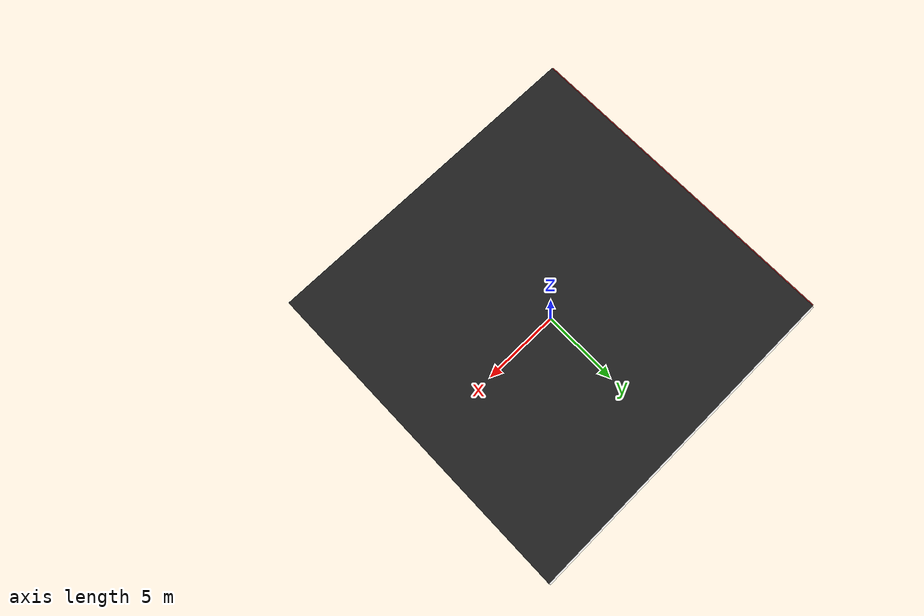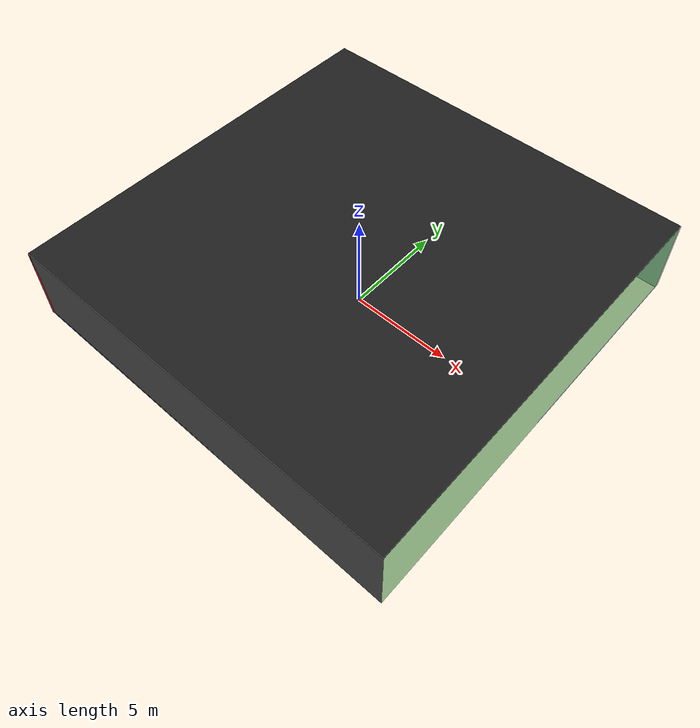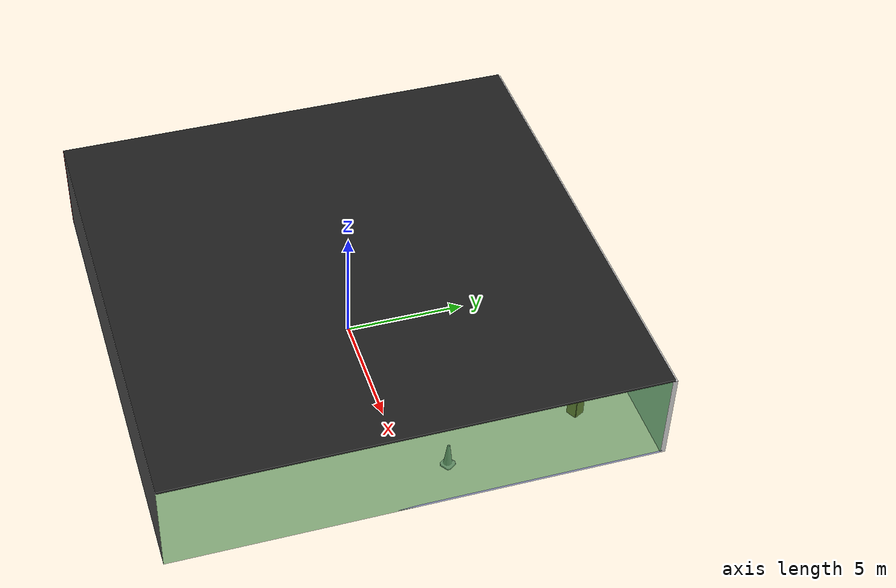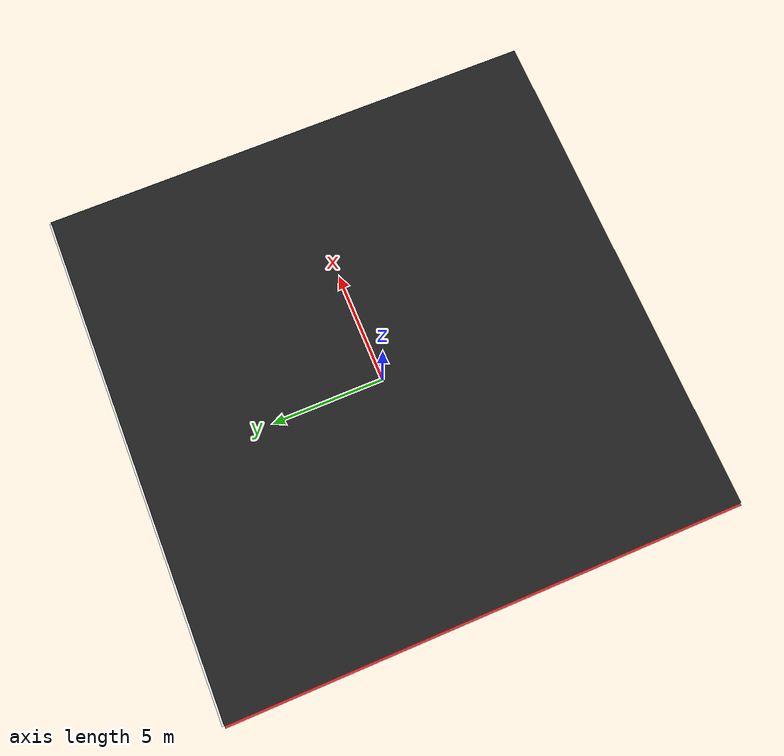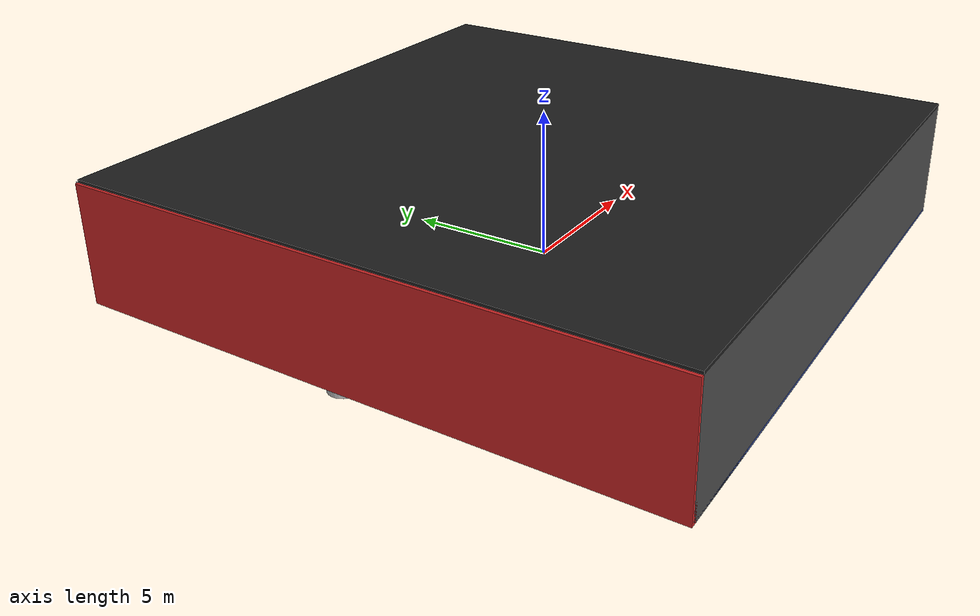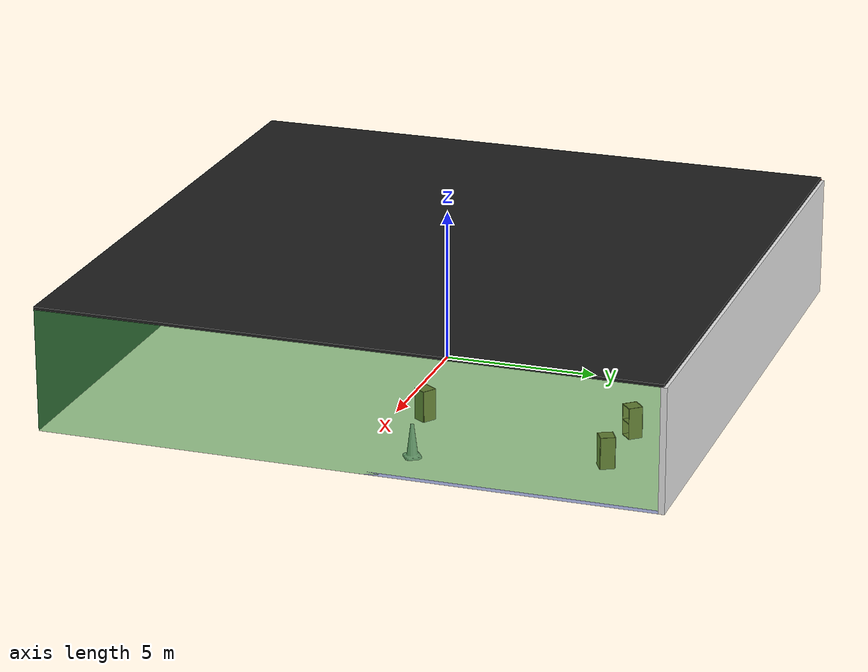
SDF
<sdf version="1.4">
 <world name="default">
  <physics type="ode">
   <max_step_size>0.001</max_step_size>
   <real_time_factor>1</real_time_factor>
   <real_time_update_rate>1000</real_time_update_rate>
   <gravity>0 0 -9.8</gravity>
  </physics>
  <scene><ambient>0.4 0.4 0.4 1</ambient><background>0.7 0.7 0.7 1</background><shadows>1</shadows></scene>
  <model name="Surrounding">
   <static>1</static>
   <link name="Ceiling">
    <collision name="Ceiling_Collision"><geometry><box><size>20 20 0.1</size></box></geometry></collision>
    <visual name="Ceiling_Visual">
     <geometry><box><size>20 20 0.1</size></box></geometry>
     <material>
      <script><uri>file://media/materials/scripts/gazebo.material</uri><name>Gazebo/FlatBlack</name></script>
     </material>
    </visual>
    <pose>0 0 4.05 0 0 0</pose>
   </link>
   <link name="Wall_South">
    <collision name="Wall_South_Collision">
     <geometry><box><size>20 0 4</size></box></geometry>
     <pose>0 0 2 0 -0 0</pose>
    </collision>
    <visual name="Wall_South_Visual">
     <pose>0 0 2 0 -0 0</pose>
     <geometry><box><size>20 0 4</size></box></geometry>
     <material>
      <script><uri>file://media/materials/scripts/gazebo.material</uri><name>Gazebo/Road</name></script>
     </material>
    </visual>
    <velocity_decay><linear>0</linear><angular>0</angular></velocity_decay>
    <pose>0 -10 0 0 -0 0</pose>
   </link>
   <link name="Wall_East">
    <collision name="Wall_21_Collision">
     <geometry><box><size>20 0 4</size></box></geometry>
     <pose>0 0 2 0 -0 0</pose>
    </collision>
    <visual name="Wall_21_Visual">
     <pose>0 0 2 0 -0 0</pose>
     <geometry><box><size>20 0 4</size></box></geometry>
     <material>
      <script><uri>file://media/materials/scripts/gazebo.material</uri><name>Gazebo/GreenTransparent</name></script>
     </material>
    </visual>
    <velocity_decay><linear>0</linear><angular>0</angular></velocity_decay>
    <pose>10 0 0 0 -0 1.5708</pose>
   </link>
   <link name="Wall_North">
    <collision name="Wall_22_Collision">
     <geometry><box><size>20 0.2 4</size></box></geometry>
     <pose>0 0 2 0 -0 0</pose>
    </collision>
    <visual name="Wall_22_Visual">
     <pose>0 0 2 0 -0 0</pose>
     <geometry><box><size>20 0.2 4</size></box></geometry>
     <material>
      <script><uri>file://media/materials/scripts/gazebo.material</uri><name>Gazebo/White</name></script>
     </material>
    </visual>
    <velocity_decay><linear>0</linear><angular>0</angular></velocity_decay>
    <pose>0 10 0 0 -0 0</pose>
   </link>
   <link name="Wall_West">
    <collision name="Wall_23_Collision">
     <geometry><box><size>20 0.2 4</size></box></geometry>
     <pose>0 0 2 0 -0 0</pose>
    </collision>
    <visual name="Wall_23_Visual">
     <pose>0 0 2 0 -0 0</pose>
     <geometry><box><size>20 0.2 4</size></box></geometry>
     <material>
      <script><uri>file://media/materials/scripts/gazebo.material</uri><name>Gazebo/Red</name></script>
     </material>
    </visual>
    <velocity_decay><linear>0</linear><angular>0</angular></velocity_decay>
    <pose>-10 0 0 0 0 -1.5708</pose>
   </link>
   <link name="Ground_link">
    <collision name="collision">
     <pose>0 0 .05 0 -0 0</pose>
     <geometry><box><size>20 20 0.1</size></box></geometry>
    </collision>
    <visual name="visual">
     <pose>0 0 .05 0 -0 0</pose>
     <geometry><box><size>20 20 0.1</size></box></geometry>
     <material>
      <script><uri>file://media/materials/scripts/gazebo.material</uri><name>Gazebo/BlueTransparent</name></script>
     </material>
    </visual>
   </link>
   <static>1</static>
  </model>
  <spherical_coordinates>
   <surface_model>EARTH_WGS84</surface_model>
   <latitude_deg>0</latitude_deg>
   <longitude_deg>0</longitude_deg>
   <elevation>0</elevation>
   <heading_deg>0</heading_deg>
  </spherical_coordinates>
  <light name="lightball_0" type="diffuse">
   <diffuse>0.8 0.8 0.8 1</diffuse>
   <specular>0.2 0.2 0.2 1</specular>
   <attenuation>
    <range>100</range>
    <constant>0.7</constant>
    <linear>0.01</linear>
    <quadratic>0.001</quadratic>
   </attenuation>
   <direction>-0.5 0.1 -0.9</direction>
   <pose>-2.07247385726 -7.69553295814 2.85936256504 0 0 0</pose>
  </light>
  <light name="lightball_1" type="diffuse">
   <diffuse>0.8 0.8 0.8 1</diffuse>
   <specular>0.2 0.2 0.2 1</specular>
   <attenuation>
    <range>100</range>
    <constant>0.7</constant>
    <linear>0.01</linear>
    <quadratic>0.001</quadratic>
   </attenuation>
   <direction>-0.5 0.1 -0.9</direction>
   <pose>2.54921571903 -8.43175135761 1.29048836046 0 0 0</pose>
  </light>
  <light name="lightball_2" type="diffuse">
   <diffuse>0.8 0.8 0.8 1</diffuse>
   <specular>0.2 0.2 0.2 1</specular>
   <attenuation>
    <range>100</range>
    <constant>0.7</constant>
    <linear>0.01</linear>
    <quadratic>0.001</quadratic>
   </attenuation>
   <direction>-0.5 0.1 -0.9</direction>
   <pose>-5.62249947738 -8.34028400821 0.586549055167 0 0 0</pose>
  </light>
  <light name="lightball_3" type="diffuse">
   <diffuse>0.8 0.8 0.8 1</diffuse>
   <specular>0.2 0.2 0.2 1</specular>
   <attenuation>
    <range>100</range>
    <constant>0.7</constant>
    <linear>0.01</linear>
    <quadratic>0.001</quadratic>
   </attenuation>
   <direction>-0.5 0.1 -0.9</direction>
   <pose>-5.08533172172 8.76731831001 1.30717573053 0 0 0</pose>
  </light>
  <light name="lightball_4" type="diffuse">
   <diffuse>0.8 0.8 0.8 1</diffuse>
   <specular>0.2 0.2 0.2 1</specular>
   <attenuation>
    <range>100</range>
    <constant>0.7</constant>
    <linear>0.01</linear>
    <quadratic>0.001</quadratic>
   </attenuation>
   <direction>-0.5 0.1 -0.9</direction>
   <pose>0.188903004683 0.0906197945793 3.28916156608 0 0 0</pose>
  </light>
  <light name="lightball_5" type="diffuse">
   <diffuse>0.8 0.8 0.8 1</diffuse>
   <specular>0.2 0.2 0.2 1</specular>
   <attenuation>
    <range>100</range>
    <constant>0.7</constant>
    <linear>0.01</linear>
    <quadratic>0.001</quadratic>
   </attenuation>
   <direction>-0.5 0.1 -0.9</direction>
   <pose>-0.125030394759 3.4330291105 1.1103343759 0 0 0</pose>
  </light>
  <light name="lightball_6" type="diffuse">
   <diffuse>0.8 0.8 0.8 1</diffuse>
   <specular>0.2 0.2 0.2 1</specular>
   <attenuation>
    <range>100</range>
    <constant>0.7</constant>
    <linear>0.01</linear>
    <quadratic>0.001</quadratic>
   </attenuation>
   <direction>-0.5 0.1 -0.9</direction>
   <pose>9.67551584509 -8.50886114133 1.97091673517 0 0 0</pose>
  </light>
  <light name="lightball_7" type="diffuse">
   <diffuse>0.8 0.8 0.8 1</diffuse>
   <specular>0.2 0.2 0.2 1</specular>
   <attenuation>
    <range>100</range>
    <constant>0.7</constant>
    <linear>0.01</linear>
    <quadratic>0.001</quadratic>
   </attenuation>
   <direction>-0.5 0.1 -0.9</direction>
   <pose>6.73743376312 -4.55255100317 2.79225902994 0 0 0</pose>
  </light>
  <light name="lightball_8" type="diffuse">
   <diffuse>0.8 0.8 0.8 1</diffuse>
   <specular>0.2 0.2 0.2 1</specular>
   <attenuation>
    <range>100</range>
    <constant>0.7</constant>
    <linear>0.01</linear>
    <quadratic>0.001</quadratic>
   </attenuation>
   <direction>-0.5 0.1 -0.9</direction>
   <pose>5.4766732832 -3.81630555471 0.663725966787 0 0 0</pose>
  </light>
  <light name="lightball_9" type="diffuse">
   <diffuse>0.8 0.8 0.8 1</diffuse>
   <specular>0.2 0.2 0.2 1</specular>
   <attenuation>
    <range>100</range>
    <constant>0.7</constant>
    <linear>0.01</linear>
    <quadratic>0.001</quadratic>
   </attenuation>
   <direction>-0.5 0.1 -0.9</direction>
   <pose>4.64716390317 4.8878279149 0.930832040601 0 0 0</pose>
  </light>
  <include>
   <uri>model://textured_shapes</uri>
   <pose>-7.84950240203 1.49626874751 0 0 0 1.97617044203</pose>
  </include>
  <include>
   <uri>model://robocup_3Dsim_goal</uri>
   <pose>-4.86871644206 -7.65528775254 0 0 0 1.4896790846</pose>
  </include>
  <include><uri>model://table</uri><pose>-1.42110185963 -8.116788577 0 0 0 2.41363861229</pose></include>
  <include><uri>model://cabinet</uri><pose>5.22636916797 1.0275709688 0 0 0 0.970970245515</pose></include>
  <include><uri>model://cabinet</uri><pose>4.50616546061 7.54359329514 0 0 0 2.27826739835</pose></include>
  <include>
   <uri>model://construction_cone</uri>
   <pose>8.27218268794 1.66673356132 0 0 0 2.1701547406</pose>
  </include>
  <include><uri>model://cabinet</uri><pose>7.04960219586 7.44921558259 0 0 0 0.48066780403</pose></include>
 </world>
</sdf>

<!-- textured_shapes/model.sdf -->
<sdf version="1.6">
  <model name="textured_shapes">
    <pose>0 0 0.5 0 0 0</pose>
    <link name="box">
      <pose>0 -1.5 0 0 0 0</pose>
      <collision name="collision">
        <geometry>
          <box>
            <size>1 1 1</size>
          </box>
        </geometry>
      </collision>
      <visual name="visual">
        <geometry>
          <box>
            <size>1 1 1</size>
          </box>
        </geometry>
        <material>
          <script>
            <uri>model://../model_source/models/textured_shapes/materials/scripts</uri>
            <uri>model://../model_source/models/textured_shapes/materials/textures</uri>
            <name>TexturedShape/Squares</name>
          </script>
        </material>
      </visual>
    </link>
    <link name="sphere">
      <collision name="collision">
        <geometry>
          <sphere>
            <radius>0.5</radius>
          </sphere>
        </geometry>
      </collision>
      <visual name="visual">
        <geometry>
          <sphere>
            <radius>0.5</radius>
          </sphere>
        </geometry>
        <material>
          <script>
            <uri>model://../model_source/models/textured_shapes/materials/scripts</uri>
            <uri>model://../model_source/models/textured_shapes/materials/textures</uri>
            <name>TexturedShape/Squares</name>
          </script>
        </material>
      </visual>
    </link>
    <link name="cylinder">
      <pose>0 1.5 0 0 0 0</pose>
      <collision name="collision">
        <geometry>
          <cylinder>
            <radius>0.5</radius>
            <length>1</length>
          </cylinder>
        </geometry>
      </collision>
      <visual name="visual">
        <geometry>
          <cylinder>
            <radius>0.5</radius>
            <length>1</length>
          </cylinder>
        </geometry>
        <material>
          <script>
            <uri>model://../model_source/models/textured_shapes/materials/scripts</uri>
            <uri>model://../model_source/models/textured_shapes/materials/textures</uri>
            <name>TexturedShape/Squares</name>
          </script>
        </material>
      </visual>
    </link>
  </model>
</sdf>

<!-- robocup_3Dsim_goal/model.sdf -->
<sdf version="1.5">
  <model name="robocup_3d_goal">
    <static>true</static>
    <link name="left_post">
      <pose>0 1.05 0.45 0 0 0</pose>
      <collision name="collision">
        <geometry>
          <cylinder>
            <radius>0.05</radius>
            <length>0.9</length>
          </cylinder>
        </geometry>
      </collision>
      <visual name="visual">
        <geometry>
          <cylinder>
            <radius>0.05</radius>
            <length>0.9</length>
          </cylinder>
        </geometry>
        <material>
          <script>
            <uri>file://media/materials/scripts/gazebo.material</uri>
            <name>Gazebo/ZincYellow</name>
          </script>
        </material>
      </visual>
    </link>
    <link name="left_support_horiz_lower">
      <pose>0.30 1.05 0.01 0 0 0</pose>
      <collision name="collision">
        <geometry>
          <box>
            <size>0.50 0.02 0.02</size>
          </box>
        </geometry>
      </collision>
      <visual name="visual">
        <geometry>
          <box>
            <size>0.50 0.02 0.02</size>
          </box>
        </geometry>
        <material>
          <script>
            <uri>file://media/materials/scripts/gazebo.material</uri>
            <name>Gazebo/White</name>
          </script>
        </material>
      </visual>
    </link>
    <link name="left_support_horiz_upper">
      <pose>0.30 1.05 0.79 0 0 0</pose>
      <collision name="collision">
        <geometry>
          <box>
            <size>0.50 0.02 0.02</size>
          </box>
        </geometry>
      </collision>
      <visual name="visual">
        <geometry>
          <box>
            <size>0.50 0.02 0.02</size>
          </box>
        </geometry>
        <material>
          <script>
            <uri>file://media/materials/scripts/gazebo.material</uri>
            <name>Gazebo/White</name>
          </script>
        </material>
      </visual>
    </link>
    <link name="left_support_vertical">
      <pose>0.56 1.05 0.4 0 1.5708 0</pose>
      <collision name="collision">
        <geometry>
          <box>
            <size>0.80 0.02 0.02</size>
          </box>
        </geometry>
      </collision>
      <visual name="visual">
        <geometry>
          <box>
            <size>0.80 0.02 0.02</size>
          </box>
        </geometry>
        <material>
          <script>
            <uri>file://media/materials/scripts/gazebo.material</uri>
            <name>Gazebo/White</name>
          </script>
        </material>
      </visual>
    </link>
    <link name="right_support_horiz_lower">
      <pose>0.30 -1.05 0.01 0 0 0</pose>
      <collision name="collision">
        <geometry>
          <box>
            <size>0.50 0.02 0.02</size>
          </box>
        </geometry>
      </collision>
      <visual name="visual">
        <geometry>
          <box>
            <size>0.50 0.02 0.02</size>
          </box>
        </geometry>
        <material>
          <script>
            <uri>file://media/materials/scripts/gazebo.material</uri>
            <name>Gazebo/White</name>
          </script>
        </material>
      </visual>
    </link>
    <link name="right_support_horiz_upper">
      <pose>0.30 -1.05 0.79 0 0 0</pose>
      <collision name="collision">
        <geometry>
          <box>
            <size>0.50 0.02 0.02</size>
          </box>
        </geometry>
      </collision>
      <visual name="visual">
        <geometry>
          <box>
            <size>0.50 0.02 0.02</size>
          </box>
        </geometry>
        <material>
          <script>
            <uri>file://media/materials/scripts/gazebo.material</uri>
            <name>Gazebo/White</name>
          </script>
        </material>
      </visual>
    </link>
    <link name="right_support_vertical">
      <pose>0.56 -1.05 0.4 0 1.5708 0</pose>
      <collision name="collision">
        <geometry>
          <box>
            <size>0.80 0.02 0.02</size>
          </box>
        </geometry>
      </collision>
      <visual name="visual">
        <geometry>
          <box>
            <size>0.80 0.02 0.02</size>
          </box>
        </geometry>
        <material>
          <script>
            <uri>file://media/materials/scripts/gazebo.material</uri>
            <name>Gazebo/White</name>
          </script>
        </material>
      </visual>
    </link>
    <link name="center_support_horiz_lower">
      <pose>0.56 0 0.01 0 1.5708 0</pose>
      <collision name="collision">
        <geometry>
          <box>
            <size>0.02 2.08 0.02</size>
          </box>
        </geometry>
      </collision>
      <visual name="visual">
        <geometry>
          <box>
            <size>0.02 2.08 0.02</size>
          </box>
        </geometry>
        <material>
          <script>
            <uri>file://media/materials/scripts/gazebo.material</uri>
            <name>Gazebo/White</name>
          </script>
        </material>
      </visual>
    </link>
    <link name="center_support_horiz_upper">
      <pose>0.56 0 0.79 0 1.5708 0</pose>
      <collision name="collision">
        <geometry>
          <box>
            <size>0.02 2.08 0.02</size>
          </box>
        </geometry>
      </collision>
      <visual name="visual">
        <geometry>
          <box>
            <size>0.02 2.08 0.02</size>
          </box>
        </geometry>
        <material>
          <script>
            <uri>file://media/materials/scripts/gazebo.material</uri>
            <name>Gazebo/White</name>
          </script>
        </material>
      </visual>
    </link>
    <link name="right_post">
      <pose>0 -1.05 0.45 0 0 0</pose>
      <collision name="collision">
        <geometry>
          <cylinder>
            <radius>0.05</radius>
            <length>0.9</length>
          </cylinder>
        </geometry>
      </collision>
      <visual name="visual">
        <geometry>
          <cylinder>
            <radius>0.05</radius>
            <length>0.9</length>
          </cylinder>
        </geometry>
        <material>
          <script>
            <uri>file://media/materials/scripts/gazebo.material</uri>
            <name>Gazebo/ZincYellow</name>
          </script>
        </material>
      </visual>
    </link>
    <link name="crossbar">
      <pose>0 0 0.85 1.57 1.57 0</pose>
      <collision name="collision">
        <geometry>
          <cylinder>
            <radius>0.05</radius>
            <length>2.0</length>
          </cylinder>
        </geometry>
      </collision>
      <visual name="visual">
        <geometry>
          <cylinder>
            <radius>0.05</radius>
            <length>2.0</length>
          </cylinder>
        </geometry>
        <material>
          <script>
            <uri>file://media/materials/scripts/gazebo.material</uri>
            <name>Gazebo/ZincYellow</name>
          </script>
        </material>
      </visual>
    </link>
    <link name="center_net">
      <pose>0.56 0 0.40 0 0 0</pose>
      <collision name="collision">
        <geometry>
          <box>
            <size>0.01 2.1 0.80</size>
          </box>
        </geometry>
      </collision>
      <visual name="visual">
        <geometry>
          <box>
            <size>0.01 2.1 0.80</size>
          </box>
        </geometry>
        <material>
          <script>
            <uri>model://../model_source/models/robocup09_spl_field/materials/scripts/</uri>
            <uri>model://../model_source/models/robocup09_spl_field/materials/textures/</uri>
            <name>RoboCup/Net</name>
          </script>
        </material>
      </visual>
    </link>
    <link name="left_net">
      <pose>0.30 1.05 0.40 0 0 0</pose>
      <collision name="collision">
        <geometry>
          <box>
            <size>0.50 0.01 0.76</size>
          </box>
        </geometry>
      </collision>
      <visual name="visual">
        <geometry>
          <box>
            <size>0.50 0.01 0.76</size>
          </box>
        </geometry>
        <material>
          <script>
            <uri>model://../model_source/models/robocup09_spl_field/materials/scripts/</uri>
            <uri>model://../model_source/models/robocup09_spl_field/materials/textures/</uri>
            <name>RoboCup/Net</name>
          </script>
        </material>
      </visual>
    </link>
    <link name="right_net">
      <pose>0.30 -1.05 0.40 0 0 0</pose>
      <collision name="collision">
        <geometry>
          <box>
            <size>0.50 0.01 0.76</size>
          </box>
        </geometry>
      </collision>
      <visual name="visual">
        <geometry>
          <box>
            <size>0.50 0.01 0.76</size>
          </box>
        </geometry>
        <material>
          <script>
            <uri>model://../model_source/models/robocup09_spl_field/materials/scripts/</uri>
            <uri>model://../model_source/models/robocup09_spl_field/materials/textures/</uri>
            <name>RoboCup/Net</name>
          </script>
        </material>
      </visual>
    </link>
  </model>
</sdf>

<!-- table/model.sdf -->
<sdf version="1.5">
  <model name="table">
    <static>true</static>
    <link name="link">
      <collision name="surface">
        <pose>0 0 1.0 0 0 0</pose>
        <geometry>
          <box>
            <size>1.5 0.8 0.03</size>
          </box>
        </geometry>
        <surface>
          <friction>
            <ode>
              <mu>0.6</mu>
              <mu2>0.6</mu2>
            </ode>
          </friction>
        </surface>
      </collision>
      <visual name="visual1">
        <pose>0 0 1.0 0 0 0</pose>
        <geometry>
          <box>
            <size>1.5 0.8 0.03</size>
          </box>
        </geometry>
        <material>
          <script>
            <uri>model://media/materials/scripts/gazebo.material</uri>
            <name>Gazebo/Wood</name>
          </script>
        </material>
      </visual>
      <collision name="front_left_leg">
        <pose>0.68 0.38 0.5 0 0 0</pose>
        <geometry>
          <cylinder>
            <radius>0.02</radius>
            <length>1.0</length>
          </cylinder>
        </geometry>
      </collision>
      <visual name="front_left_leg">
        <pose>0.68 0.38 0.5 0 0 0</pose>
        <geometry>
          <cylinder>
            <radius>0.02</radius>
            <length>1.0</length>
          </cylinder>
        </geometry>
        <material>
          <script>
            <uri>model://media/materials/scripts/gazebo.material</uri>
            <name>Gazebo/Grey</name>
          </script>
        </material>
      </visual>
      <collision name="front_right_leg">
        <pose>0.68 -0.38 0.5 0 0 0</pose>
        <geometry>
          <cylinder>
            <radius>0.02</radius>
            <length>1.0</length>
          </cylinder>
        </geometry>
      </collision>
      <visual name="front_right_leg">
        <pose>0.68 -0.38 0.5 0 0 0</pose>
        <geometry>
          <cylinder>
            <radius>0.02</radius>
            <length>1.0</length>
          </cylinder>
        </geometry>
        <material>
          <script>
            <uri>model://media/materials/scripts/gazebo.material</uri>
            <name>Gazebo/Grey</name>
          </script>
        </material>
      </visual>
      <collision name="back_right_leg">
        <pose>-0.68 -0.38 0.5 0 0 0</pose>
        <geometry>
          <cylinder>
            <radius>0.02</radius>
            <length>1.0</length>
          </cylinder>
        </geometry>
      </collision>
      <visual name="back_right_leg">
        <pose>-0.68 -0.38 0.5 0 0 0</pose>
        <geometry>
          <cylinder>
            <radius>0.02</radius>
            <length>1.0</length>
          </cylinder>
        </geometry>
        <material>
          <script>
            <uri>model://media/materials/scripts/gazebo.material</uri>
            <name>Gazebo/Grey</name>
          </script>
        </material>
      </visual>
      <collision name="back_left_leg">
        <pose>-0.68 0.38 0.5 0 0 0</pose>
        <geometry>
          <cylinder>
            <radius>0.02</radius>
            <length>1.0</length>
          </cylinder>
        </geometry>
      </collision>
      <visual name="back_left_leg">
        <pose>-0.68 0.38 0.5 0 0 0</pose>
        <geometry>
          <cylinder>
            <radius>0.02</radius>
            <length>1.0</length>
          </cylinder>
        </geometry>
        <material>
          <script>
            <uri>model://media/materials/scripts/gazebo.material</uri>
            <name>Gazebo/Grey</name>
          </script>
        </material>
      </visual>
    </link>
  </model>
</sdf>

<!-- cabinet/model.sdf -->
<sdf version="1.5">
  <model name="cabinet">
    <static>true</static>
    <link name="cabinet_bottom_plate">
      <inertial>
        <pose>0 0 -1 0 0 0</pose>
        <inertia>
          <ixx>2.050000</ixx>
          <ixy>0</ixy>
          <ixz>0</ixz>
          <iyy>2.050000</iyy>
          <iyz>0</iyz>
          <izz>2.050000</izz>
        </inertia>
        <mass>25.000000</mass>
      </inertial>
      <collision name="cabinet_bottom_plate_geom">
        <pose>0 0 0.010000 0 0 0</pose>
        <geometry>
          <box>
            <size>0.450000 0.450000 0.020000</size>
          </box>
        </geometry>
      </collision>
      <visual name="cabinet_bottom_plate_geom_visual">
        <pose>0 0 0.010000 0 0 0</pose>
        <geometry>
          <box>
            <size>0.450000 0.450000 0.020000</size>
          </box>
        </geometry>
        <material>
          <script>
            <uri>model://media/materials/scripts/gazebo.material</uri>
            <name>Gazebo/Wood</name>
          </script>
        </material>
      </visual>
      <collision name="cabinet_bottom_plate_geom_cabinet_back_plate">
        <pose>0.235000 0 0.510000 0 0 0</pose>
        <geometry>
          <box>
            <size>0.020000 0.450000 1.020000</size>
          </box>
        </geometry>
      </collision>
      <visual name="cabinet_bottom_plate_geom_cabinet_back_plate_visual">
        <pose>0.235000 0 0.510000 0 0 0</pose>
        <geometry>
          <box>
            <size>0.020000 0.450000 1.020000</size>
          </box>
        </geometry>
        <material>
          <script>
            <uri>model://media/materials/scripts/gazebo.material</uri>
            <name>Gazebo/Wood</name>
          </script>
        </material>
      </visual>
      <collision name="cabinet_bottom_plate_geom_cabinet_left_plate">
        <pose>0 0.235000 0.510000 0 0 0</pose>
        <geometry>
          <box>
            <size>0.450000 0.020000 1.020000</size>
          </box>
        </geometry>
      </collision>
      <visual name="cabinet_bottom_plate_geom_cabinet_left_plate_visual">
        <pose>0 0.235000 0.510000 0 0 0</pose>
        <geometry>
          <box>
            <size>0.450000 0.020000 1.020000</size>
          </box>
        </geometry>
        <material>
          <script>
            <uri>model://media/materials/scripts/gazebo.material</uri>
            <name>Gazebo/Wood</name>
          </script>
        </material>
      </visual>
      <collision name="cabinet_bottom_plate_geom_cabinet_middle_plate">
        <pose>0 0 0.510000 0 0 0</pose>
        <geometry>
          <box>
            <size>0.450000 0.450000 0.020000</size>
          </box>
        </geometry>
      </collision>
      <visual name="cabinet_bottom_plate_geom_cabinet_middle_plate_visual">
        <pose>0 0 0.510000 0 0 0</pose>
        <geometry>
          <box>
            <size>0.450000 0.450000 0.020000</size>
          </box>
        </geometry>
        <material>
          <script>
            <uri>model://media/materials/scripts/gazebo.material</uri>
            <name>Gazebo/Wood</name>
          </script>
        </material>
      </visual>
      <collision name="cabinet_bottom_plate_geom_cabinet_right_plate">
        <pose>0 -0.235000 0.510000 0 0 0</pose>
        <geometry>
          <box>
            <size>0.450000 0.020000 1.020000</size>
          </box>
        </geometry>
      </collision>
      <visual name="cabinet_bottom_plate_geom_cabinet_right_plate_visual">
        <pose>0 -0.235000 0.510000 0 0 0</pose>
        <geometry>
          <box>
            <size>0.450000 0.020000 1.020000</size>
          </box>
        </geometry>
        <material>
          <script>
            <uri>model://media/materials/scripts/gazebo.material</uri>
            <name>Gazebo/Wood</name>
          </script>
        </material>
      </visual>
      <collision name="cabinet_bottom_plate_geom_cabinet_top_plate">
        <pose>0 0 1.010000 0 0 0</pose>
        <geometry>
          <box>
            <size>0.450000 0.450000 0.020000</size>
          </box>
        </geometry>
      </collision>
      <visual name="cabinet_bottom_plate_geom_cabinet_top_plate_visual">
        <pose>0 0 1.010000 0 0 0</pose>
        <geometry>
          <box>
            <size>0.450000 0.450000 0.020000</size>
          </box>
        </geometry>
        <material>
          <script>
            <uri>model://media/materials/scripts/gazebo.material</uri>
            <name>Gazebo/Wood</name>
          </script>
        </material>
      </visual>
    </link>
  </model>
</sdf>

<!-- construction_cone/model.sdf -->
<sdf version="1.5">
  <model name="Construction Cone">
    <link name="link">
      <collision name="collision">
        <geometry>
          <mesh>
            <scale>10 10 10</scale>
            <uri>file://isr-testbed/construction_cone/meshes/construction_cone.dae</uri>
          </mesh>
        </geometry>
      </collision>
      <visual name="visual">
        <geometry>
          <mesh>
            <scale>10 10 10</scale>
            <uri>file://isr-testbed/construction_cone/meshes/construction_cone.dae</uri>
          </mesh>
        </geometry>
      </visual>
    </link>
  </model>
</sdf>
